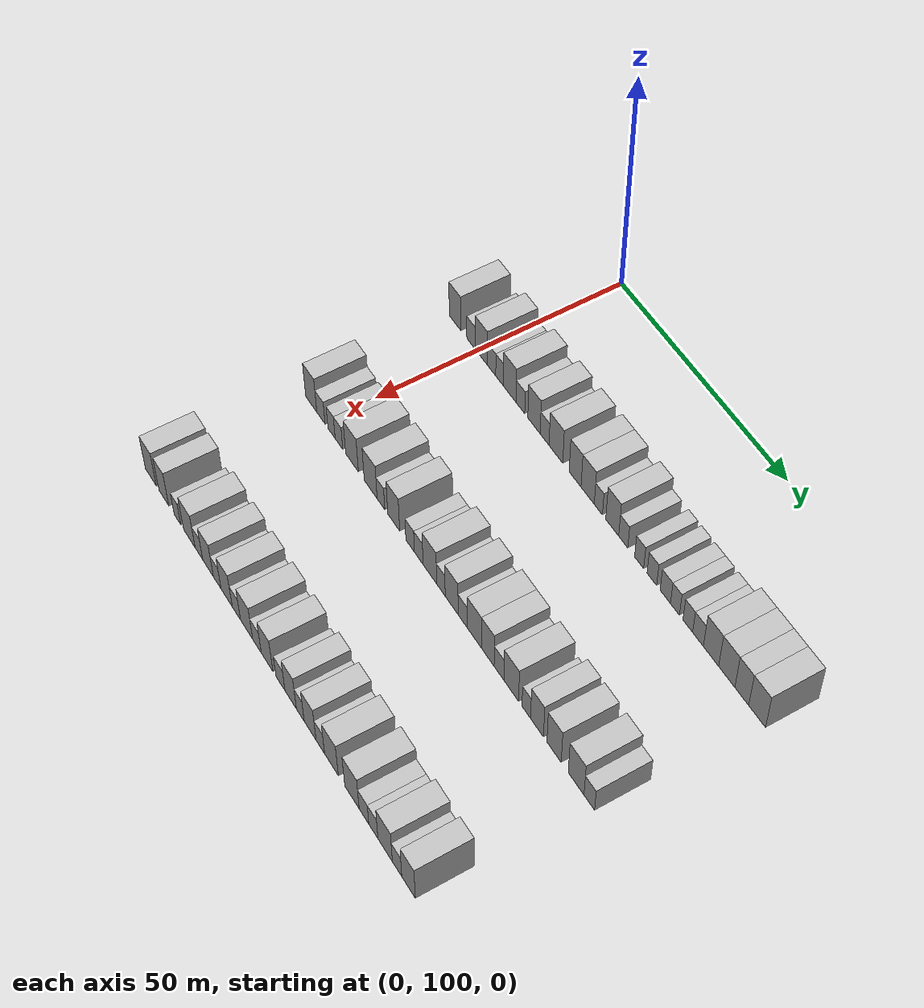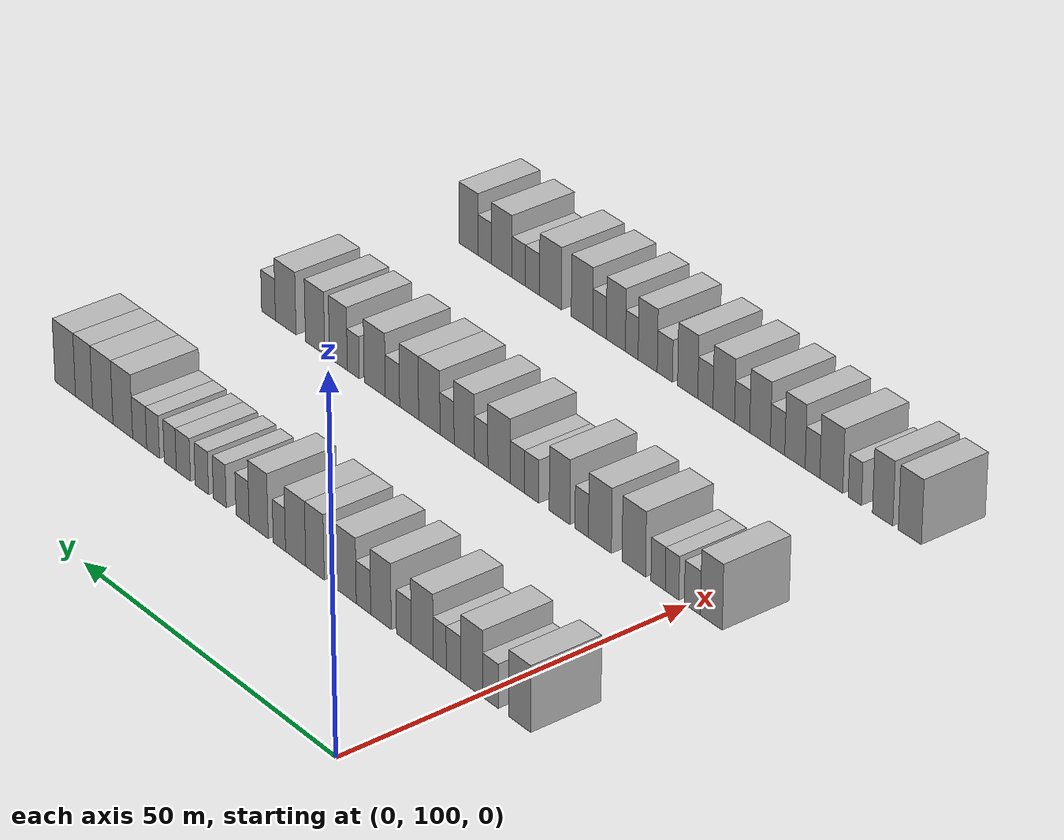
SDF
<sdf version="1.6">
 <world name="default">
  <model name="building_97">
   <static>1</static>
   <pose>25.0000 92.6432 0 0.000000 0.000000 0.000000</pose>
   <link name="link">
    <pose>0 0 4.50 0 0 0</pose>
    <collision name="collision"><geometry><box><size>10.0000 3.9647 9.0000</size></box></geometry></collision>
    <visual name="visual">
     <cast_shadows>0</cast_shadows>
     <geometry><box><size>10.0000 3.9647 9.0000</size></box></geometry>
     <material>
      <script>
       <uri>model://HANNAS_wall/materials/scripts</uri>
       <uri>model://HANNAS_wall/materials/textures</uri>
       <name>vrc/HANNAS_wall</name>
      </script>
     </material>
    </visual>
   </link>
  </model>
  <model name="building_98">
   <static>1</static>
   <pose>25.0000 98.0626 0 0.000000 0.000000 0.000000</pose>
   <link name="link">
    <pose>0 0 3.00 0 0 0</pose>
    <collision name="collision"><geometry><box><size>10.0000 2.8742 6.0000</size></box></geometry></collision>
    <visual name="visual">
     <cast_shadows>0</cast_shadows>
     <geometry><box><size>10.0000 2.8742 6.0000</size></box></geometry>
     <material>
      <script>
       <uri>model://HANNAS_wall/materials/scripts</uri>
       <uri>model://HANNAS_wall/materials/textures</uri>
       <name>vrc/HANNAS_wall</name>
      </script>
     </material>
    </visual>
   </link>
  </model>
  <model name="building_99">
   <static>1</static>
   <pose>25.0000 101.5281 0 0.000000 0.000000 0.000000</pose>
   <link name="link">
    <pose>0 0 4.50 0 0 0</pose>
    <collision name="collision"><geometry><box><size>10.0000 4.0567 9.0000</size></box></geometry></collision>
    <visual name="visual">
     <cast_shadows>0</cast_shadows>
     <geometry><box><size>10.0000 4.0567 9.0000</size></box></geometry>
     <material>
      <script>
       <uri>model://HANNAS_wall/materials/scripts</uri>
       <uri>model://HANNAS_wall/materials/textures</uri>
       <name>vrc/HANNAS_wall</name>
      </script>
     </material>
    </visual>
   </link>
  </model>
  <model name="building_100">
   <static>1</static>
   <pose>25.0000 104.9408 0 0.000000 0.000000 0.000000</pose>
   <link name="link">
    <pose>0 0 3.00 0 0 0</pose>
    <collision name="collision"><geometry><box><size>10.0000 2.7688 6.0000</size></box></geometry></collision>
    <visual name="visual">
     <cast_shadows>0</cast_shadows>
     <geometry><box><size>10.0000 2.7688 6.0000</size></box></geometry>
     <material>
      <script>
       <uri>model://HANNAS_wall/materials/scripts</uri>
       <uri>model://HANNAS_wall/materials/textures</uri>
       <name>vrc/HANNAS_wall</name>
      </script>
     </material>
    </visual>
   </link>
  </model>
  <model name="building_101">
   <static>1</static>
   <pose>25.0000 107.5602 0 0.000000 0.000000 0.000000</pose>
   <link name="link">
    <pose>0 0 3.00 0 0 0</pose>
    <collision name="collision"><geometry><box><size>10.0000 2.4700 6.0000</size></box></geometry></collision>
    <visual name="visual">
     <cast_shadows>0</cast_shadows>
     <geometry><box><size>10.0000 2.4700 6.0000</size></box></geometry>
     <material>
      <script>
       <uri>model://HANNAS_wall/materials/scripts</uri>
       <uri>model://HANNAS_wall/materials/textures</uri>
       <name>vrc/HANNAS_wall</name>
      </script>
     </material>
    </visual>
   </link>
  </model>
  <model name="building_102">
   <static>1</static>
   <pose>25.0000 110.8871 0 0.000000 0.000000 0.000000</pose>
   <link name="link">
    <pose>0 0 4.50 0 0 0</pose>
    <collision name="collision"><geometry><box><size>10.0000 4.1836 9.0000</size></box></geometry></collision>
    <visual name="visual">
     <cast_shadows>0</cast_shadows>
     <geometry><box><size>10.0000 4.1836 9.0000</size></box></geometry>
     <material>
      <script>
       <uri>model://HANNAS_wall/materials/scripts</uri>
       <uri>model://HANNAS_wall/materials/textures</uri>
       <name>vrc/HANNAS_wall</name>
      </script>
     </material>
    </visual>
   </link>
  </model>
  <model name="building_103">
   <static>1</static>
   <pose>25.0000 114.3902 0 0.000000 0.000000 0.000000</pose>
   <link name="link">
    <pose>0 0 3.00 0 0 0</pose>
    <collision name="collision"><geometry><box><size>10.0000 2.8227 6.0000</size></box></geometry></collision>
    <visual name="visual">
     <cast_shadows>0</cast_shadows>
     <geometry><box><size>10.0000 2.8227 6.0000</size></box></geometry>
     <material>
      <script>
       <uri>model://HANNAS_wall/materials/scripts</uri>
       <uri>model://HANNAS_wall/materials/textures</uri>
       <name>vrc/HANNAS_wall</name>
      </script>
     </material>
    </visual>
   </link>
  </model>
  <model name="building_104">
   <static>1</static>
   <pose>25.0000 118.7775 0 0.000000 0.000000 0.000000</pose>
   <link name="link">
    <pose>0 0 4.50 0 0 0</pose>
    <collision name="collision"><geometry><box><size>10.0000 3.9520 9.0000</size></box></geometry></collision>
    <visual name="visual">
     <cast_shadows>0</cast_shadows>
     <geometry><box><size>10.0000 3.9520 9.0000</size></box></geometry>
     <material>
      <script>
       <uri>model://HANNAS_wall/materials/scripts</uri>
       <uri>model://HANNAS_wall/materials/textures</uri>
       <name>vrc/HANNAS_wall</name>
      </script>
     </material>
    </visual>
   </link>
  </model>
  <model name="building_105">
   <static>1</static>
   <pose>25.0000 122.1627 0 0.000000 0.000000 0.000000</pose>
   <link name="link">
    <pose>0 0 3.00 0 0 0</pose>
    <collision name="collision"><geometry><box><size>10.0000 2.8183 6.0000</size></box></geometry></collision>
    <visual name="visual">
     <cast_shadows>0</cast_shadows>
     <geometry><box><size>10.0000 2.8183 6.0000</size></box></geometry>
     <material>
      <script>
       <uri>model://HANNAS_wall/materials/scripts</uri>
       <uri>model://HANNAS_wall/materials/textures</uri>
       <name>vrc/HANNAS_wall</name>
      </script>
     </material>
    </visual>
   </link>
  </model>
  <model name="building_106">
   <static>1</static>
   <pose>25.0000 125.7240 0 0.000000 0.000000 0.000000</pose>
   <link name="link">
    <pose>0 0 4.50 0 0 0</pose>
    <collision name="collision"><geometry><box><size>10.0000 4.3044 9.0000</size></box></geometry></collision>
    <visual name="visual">
     <cast_shadows>0</cast_shadows>
     <geometry><box><size>10.0000 4.3044 9.0000</size></box></geometry>
     <material>
      <script>
       <uri>model://HANNAS_wall/materials/scripts</uri>
       <uri>model://HANNAS_wall/materials/textures</uri>
       <name>vrc/HANNAS_wall</name>
      </script>
     </material>
    </visual>
   </link>
  </model>
  <model name="building_107">
   <static>1</static>
   <pose>25.0000 131.7097 0 0.000000 0.000000 0.000000</pose>
   <link name="link">
    <pose>0 0 4.50 0 0 0</pose>
    <collision name="collision"><geometry><box><size>10.0000 3.6670 9.0000</size></box></geometry></collision>
    <visual name="visual">
     <cast_shadows>0</cast_shadows>
     <geometry><box><size>10.0000 3.6670 9.0000</size></box></geometry>
     <material>
      <script>
       <uri>model://HANNAS_wall/materials/scripts</uri>
       <uri>model://HANNAS_wall/materials/textures</uri>
       <name>vrc/HANNAS_wall</name>
      </script>
     </material>
    </visual>
   </link>
  </model>
  <model name="building_108">
   <static>1</static>
   <pose>25.0000 135.5676 0 0.000000 0.000000 0.000000</pose>
   <link name="link">
    <pose>0 0 4.50 0 0 0</pose>
    <collision name="collision"><geometry><box><size>10.0000 4.0488 9.0000</size></box></geometry></collision>
    <visual name="visual">
     <cast_shadows>0</cast_shadows>
     <geometry><box><size>10.0000 4.0488 9.0000</size></box></geometry>
     <material>
      <script>
       <uri>model://HANNAS_wall/materials/scripts</uri>
       <uri>model://HANNAS_wall/materials/textures</uri>
       <name>vrc/HANNAS_wall</name>
      </script>
     </material>
    </visual>
   </link>
  </model>
  <model name="building_109">
   <static>1</static>
   <pose>25.0000 138.8299 0 0.000000 0.000000 0.000000</pose>
   <link name="link">
    <pose>0 0 3.00 0 0 0</pose>
    <collision name="collision"><geometry><box><size>10.0000 2.4757 6.0000</size></box></geometry></collision>
    <visual name="visual">
     <cast_shadows>0</cast_shadows>
     <geometry><box><size>10.0000 2.4757 6.0000</size></box></geometry>
     <material>
      <script>
       <uri>model://HANNAS_wall/materials/scripts</uri>
       <uri>model://HANNAS_wall/materials/textures</uri>
       <name>vrc/HANNAS_wall</name>
      </script>
     </material>
    </visual>
   </link>
  </model>
  <model name="building_110">
   <static>1</static>
   <pose>25.0000 143.0041 0 0.000000 0.000000 0.000000</pose>
   <link name="link">
    <pose>0 0 4.50 0 0 0</pose>
    <collision name="collision"><geometry><box><size>10.0000 3.8727 9.0000</size></box></geometry></collision>
    <visual name="visual">
     <cast_shadows>0</cast_shadows>
     <geometry><box><size>10.0000 3.8727 9.0000</size></box></geometry>
     <material>
      <script>
       <uri>model://HANNAS_wall/materials/scripts</uri>
       <uri>model://HANNAS_wall/materials/textures</uri>
       <name>vrc/HANNAS_wall</name>
      </script>
     </material>
    </visual>
   </link>
  </model>
  <model name="building_111">
   <static>1</static>
   <pose>25.0000 146.2888 0 0.000000 0.000000 0.000000</pose>
   <link name="link">
    <pose>0 0 3.00 0 0 0</pose>
    <collision name="collision"><geometry><box><size>10.0000 2.6967 6.0000</size></box></geometry></collision>
    <visual name="visual">
     <cast_shadows>0</cast_shadows>
     <geometry><box><size>10.0000 2.6967 6.0000</size></box></geometry>
     <material>
      <script>
       <uri>model://HANNAS_wall/materials/scripts</uri>
       <uri>model://HANNAS_wall/materials/textures</uri>
       <name>vrc/HANNAS_wall</name>
      </script>
     </material>
    </visual>
   </link>
  </model>
  <model name="building_112">
   <static>1</static>
   <pose>25.0000 150.9653 0 0.000000 0.000000 0.000000</pose>
   <link name="link">
    <pose>0 0 3.00 0 0 0</pose>
    <collision name="collision"><geometry><box><size>10.0000 2.6562 6.0000</size></box></geometry></collision>
    <visual name="visual">
     <cast_shadows>0</cast_shadows>
     <geometry><box><size>10.0000 2.6562 6.0000</size></box></geometry>
     <material>
      <script>
       <uri>model://HANNAS_wall/materials/scripts</uri>
       <uri>model://HANNAS_wall/materials/textures</uri>
       <name>vrc/HANNAS_wall</name>
      </script>
     </material>
    </visual>
   </link>
  </model>
  <model name="building_113">
   <static>1</static>
   <pose>25.0000 154.6771 0 0.000000 0.000000 0.000000</pose>
   <link name="link">
    <pose>0 0 3.00 0 0 0</pose>
    <collision name="collision"><geometry><box><size>10.0000 2.7674 6.0000</size></box></geometry></collision>
    <visual name="visual">
     <cast_shadows>0</cast_shadows>
     <geometry><box><size>10.0000 2.7674 6.0000</size></box></geometry>
     <material>
      <script>
       <uri>model://HANNAS_wall/materials/scripts</uri>
       <uri>model://HANNAS_wall/materials/textures</uri>
       <name>vrc/HANNAS_wall</name>
      </script>
     </material>
    </visual>
   </link>
  </model>
  <model name="building_114">
   <static>1</static>
   <pose>25.0000 158.5410 0 0.000000 0.000000 0.000000</pose>
   <link name="link">
    <pose>0 0 3.00 0 0 0</pose>
    <collision name="collision"><geometry><box><size>10.0000 2.9604 6.0000</size></box></geometry></collision>
    <visual name="visual">
     <cast_shadows>0</cast_shadows>
     <geometry><box><size>10.0000 2.9604 6.0000</size></box></geometry>
     <material>
      <script>
       <uri>model://HANNAS_wall/materials/scripts</uri>
       <uri>model://HANNAS_wall/materials/textures</uri>
       <name>vrc/HANNAS_wall</name>
      </script>
     </material>
    </visual>
   </link>
  </model>
  <model name="building_115">
   <static>1</static>
   <pose>25.0000 161.2959 0 0.000000 0.000000 0.000000</pose>
   <link name="link">
    <pose>0 0 3.00 0 0 0</pose>
    <collision name="collision"><geometry><box><size>10.0000 2.5495 6.0000</size></box></geometry></collision>
    <visual name="visual">
     <cast_shadows>0</cast_shadows>
     <geometry><box><size>10.0000 2.5495 6.0000</size></box></geometry>
     <material>
      <script>
       <uri>model://HANNAS_wall/materials/scripts</uri>
       <uri>model://HANNAS_wall/materials/textures</uri>
       <name>vrc/HANNAS_wall</name>
      </script>
     </material>
    </visual>
   </link>
  </model>
  <model name="building_116">
   <static>1</static>
   <pose>25.0000 164.9317 0 0.000000 0.000000 0.000000</pose>
   <link name="link">
    <pose>0 0 3.00 0 0 0</pose>
    <collision name="collision"><geometry><box><size>10.0000 2.7222 6.0000</size></box></geometry></collision>
    <visual name="visual">
     <cast_shadows>0</cast_shadows>
     <geometry><box><size>10.0000 2.7222 6.0000</size></box></geometry>
     <material>
      <script>
       <uri>model://HANNAS_wall/materials/scripts</uri>
       <uri>model://HANNAS_wall/materials/textures</uri>
       <name>vrc/HANNAS_wall</name>
      </script>
     </material>
    </visual>
   </link>
  </model>
  <model name="building_117">
   <static>1</static>
   <pose>25.0000 167.7919 0 0.000000 0.000000 0.000000</pose>
   <link name="link">
    <pose>0 0 3.00 0 0 0</pose>
    <collision name="collision"><geometry><box><size>10.0000 2.9983 6.0000</size></box></geometry></collision>
    <visual name="visual">
     <cast_shadows>0</cast_shadows>
     <geometry><box><size>10.0000 2.9983 6.0000</size></box></geometry>
     <material>
      <script>
       <uri>model://HANNAS_wall/materials/scripts</uri>
       <uri>model://HANNAS_wall/materials/textures</uri>
       <name>vrc/HANNAS_wall</name>
      </script>
     </material>
    </visual>
   </link>
  </model>
  <model name="building_118">
   <static>1</static>
   <pose>25.0000 171.4049 0 0.000000 0.000000 0.000000</pose>
   <link name="link">
    <pose>0 0 4.50 0 0 0</pose>
    <collision name="collision"><geometry><box><size>10.0000 4.2276 9.0000</size></box></geometry></collision>
    <visual name="visual">
     <cast_shadows>0</cast_shadows>
     <geometry><box><size>10.0000 4.2276 9.0000</size></box></geometry>
     <material>
      <script>
       <uri>model://HANNAS_wall/materials/scripts</uri>
       <uri>model://HANNAS_wall/materials/textures</uri>
       <name>vrc/HANNAS_wall</name>
      </script>
     </material>
    </visual>
   </link>
  </model>
  <model name="building_119">
   <static>1</static>
   <pose>25.0000 175.7273 0 0.000000 0.000000 0.000000</pose>
   <link name="link">
    <pose>0 0 4.50 0 0 0</pose>
    <collision name="collision"><geometry><box><size>10.0000 4.4171 9.0000</size></box></geometry></collision>
    <visual name="visual">
     <cast_shadows>0</cast_shadows>
     <geometry><box><size>10.0000 4.4171 9.0000</size></box></geometry>
     <material>
      <script>
       <uri>model://HANNAS_wall/materials/scripts</uri>
       <uri>model://HANNAS_wall/materials/textures</uri>
       <name>vrc/HANNAS_wall</name>
      </script>
     </material>
    </visual>
   </link>
  </model>
  <model name="building_120">
   <static>1</static>
   <pose>25.0000 179.7919 0 0.000000 0.000000 0.000000</pose>
   <link name="link">
    <pose>0 0 4.50 0 0 0</pose>
    <collision name="collision"><geometry><box><size>10.0000 3.7121 9.0000</size></box></geometry></collision>
    <visual name="visual">
     <cast_shadows>0</cast_shadows>
     <geometry><box><size>10.0000 3.7121 9.0000</size></box></geometry>
     <material>
      <script>
       <uri>model://HANNAS_wall/materials/scripts</uri>
       <uri>model://HANNAS_wall/materials/textures</uri>
       <name>vrc/HANNAS_wall</name>
      </script>
     </material>
    </visual>
   </link>
  </model>
  <model name="building_121">
   <static>1</static>
   <pose>25.0000 183.8972 0 0.000000 0.000000 0.000000</pose>
   <link name="link">
    <pose>0 0 4.50 0 0 0</pose>
    <collision name="collision"><geometry><box><size>10.0000 4.4984 9.0000</size></box></geometry></collision>
    <visual name="visual">
     <cast_shadows>0</cast_shadows>
     <geometry><box><size>10.0000 4.4984 9.0000</size></box></geometry>
     <material>
      <script>
       <uri>model://HANNAS_wall/materials/scripts</uri>
       <uri>model://HANNAS_wall/materials/textures</uri>
       <name>vrc/HANNAS_wall</name>
      </script>
     </material>
    </visual>
   </link>
  </model>
  <model name="building_247">
   <static>1</static>
   <pose>55.0000 95.5424 0 0.000000 0.000000 0.000000</pose>
   <link name="link">
    <pose>0 0 4.50 0 0 0</pose>
    <collision name="collision"><geometry><box><size>10.0000 3.9497 9.0000</size></box></geometry></collision>
    <visual name="visual">
     <cast_shadows>0</cast_shadows>
     <geometry><box><size>10.0000 3.9497 9.0000</size></box></geometry>
     <material>
      <script>
       <uri>model://HANNAS_wall/materials/scripts</uri>
       <uri>model://HANNAS_wall/materials/textures</uri>
       <name>vrc/HANNAS_wall</name>
      </script>
     </material>
    </visual>
   </link>
  </model>
  <model name="building_248">
   <static>1</static>
   <pose>55.0000 98.9866 0 0.000000 0.000000 0.000000</pose>
   <link name="link">
    <pose>0 0 3.00 0 0 0</pose>
    <collision name="collision"><geometry><box><size>10.0000 2.9389 6.0000</size></box></geometry></collision>
    <visual name="visual">
     <cast_shadows>0</cast_shadows>
     <geometry><box><size>10.0000 2.9389 6.0000</size></box></geometry>
     <material>
      <script>
       <uri>model://HANNAS_wall/materials/scripts</uri>
       <uri>model://HANNAS_wall/materials/textures</uri>
       <name>vrc/HANNAS_wall</name>
      </script>
     </material>
    </visual>
   </link>
  </model>
  <model name="building_249">
   <static>1</static>
   <pose>55.0000 102.7095 0 0.000000 0.000000 0.000000</pose>
   <link name="link">
    <pose>0 0 3.00 0 0 0</pose>
    <collision name="collision"><geometry><box><size>10.0000 2.5068 6.0000</size></box></geometry></collision>
    <visual name="visual">
     <cast_shadows>0</cast_shadows>
     <geometry><box><size>10.0000 2.5068 6.0000</size></box></geometry>
     <material>
      <script>
       <uri>model://HANNAS_wall/materials/scripts</uri>
       <uri>model://HANNAS_wall/materials/textures</uri>
       <name>vrc/HANNAS_wall</name>
      </script>
     </material>
    </visual>
   </link>
  </model>
  <model name="building_250">
   <static>1</static>
   <pose>55.0000 105.2925 0 0.000000 0.000000 0.000000</pose>
   <link name="link">
    <pose>0 0 3.00 0 0 0</pose>
    <collision name="collision"><geometry><box><size>10.0000 2.6593 6.0000</size></box></geometry></collision>
    <visual name="visual">
     <cast_shadows>0</cast_shadows>
     <geometry><box><size>10.0000 2.6593 6.0000</size></box></geometry>
     <material>
      <script>
       <uri>model://HANNAS_wall/materials/scripts</uri>
       <uri>model://HANNAS_wall/materials/textures</uri>
       <name>vrc/HANNAS_wall</name>
      </script>
     </material>
    </visual>
   </link>
  </model>
  <model name="building_251">
   <static>1</static>
   <pose>55.0000 109.8097 0 0.000000 0.000000 0.000000</pose>
   <link name="link">
    <pose>0 0 4.50 0 0 0</pose>
    <collision name="collision"><geometry><box><size>10.0000 4.3751 9.0000</size></box></geometry></collision>
    <visual name="visual">
     <cast_shadows>0</cast_shadows>
     <geometry><box><size>10.0000 4.3751 9.0000</size></box></geometry>
     <material>
      <script>
       <uri>model://HANNAS_wall/materials/scripts</uri>
       <uri>model://HANNAS_wall/materials/textures</uri>
       <name>vrc/HANNAS_wall</name>
      </script>
     </material>
    </visual>
   </link>
  </model>
  <model name="building_252">
   <static>1</static>
   <pose>55.0000 116.1720 0 0.000000 0.000000 0.000000</pose>
   <link name="link">
    <pose>0 0 4.50 0 0 0</pose>
    <collision name="collision"><geometry><box><size>10.0000 4.3495 9.0000</size></box></geometry></collision>
    <visual name="visual">
     <cast_shadows>0</cast_shadows>
     <geometry><box><size>10.0000 4.3495 9.0000</size></box></geometry>
     <material>
      <script>
       <uri>model://HANNAS_wall/materials/scripts</uri>
       <uri>model://HANNAS_wall/materials/textures</uri>
       <name>vrc/HANNAS_wall</name>
      </script>
     </material>
    </visual>
   </link>
  </model>
  <model name="building_253">
   <static>1</static>
   <pose>55.0000 119.6206 0 0.000000 0.000000 0.000000</pose>
   <link name="link">
    <pose>0 0 3.00 0 0 0</pose>
    <collision name="collision"><geometry><box><size>10.0000 2.5476 6.0000</size></box></geometry></collision>
    <visual name="visual">
     <cast_shadows>0</cast_shadows>
     <geometry><box><size>10.0000 2.5476 6.0000</size></box></geometry>
     <material>
      <script>
       <uri>model://HANNAS_wall/materials/scripts</uri>
       <uri>model://HANNAS_wall/materials/textures</uri>
       <name>vrc/HANNAS_wall</name>
      </script>
     </material>
    </visual>
   </link>
  </model>
  <model name="building_254">
   <static>1</static>
   <pose>55.0000 123.8730 0 0.000000 0.000000 0.000000</pose>
   <link name="link">
    <pose>0 0 4.50 0 0 0</pose>
    <collision name="collision"><geometry><box><size>10.0000 3.9574 9.0000</size></box></geometry></collision>
    <visual name="visual">
     <cast_shadows>0</cast_shadows>
     <geometry><box><size>10.0000 3.9574 9.0000</size></box></geometry>
     <material>
      <script>
       <uri>model://HANNAS_wall/materials/scripts</uri>
       <uri>model://HANNAS_wall/materials/textures</uri>
       <name>vrc/HANNAS_wall</name>
      </script>
     </material>
    </visual>
   </link>
  </model>
  <model name="building_255">
   <static>1</static>
   <pose>55.0000 129.2522 0 0.000000 0.000000 0.000000</pose>
   <link name="link">
    <pose>0 0 3.00 0 0 0</pose>
    <collision name="collision"><geometry><box><size>10.0000 2.8010 6.0000</size></box></geometry></collision>
    <visual name="visual">
     <cast_shadows>0</cast_shadows>
     <geometry><box><size>10.0000 2.8010 6.0000</size></box></geometry>
     <material>
      <script>
       <uri>model://HANNAS_wall/materials/scripts</uri>
       <uri>model://HANNAS_wall/materials/textures</uri>
       <name>vrc/HANNAS_wall</name>
      </script>
     </material>
    </visual>
   </link>
  </model>
  <model name="building_256">
   <static>1</static>
   <pose>55.0000 132.0462 0 0.000000 0.000000 0.000000</pose>
   <link name="link">
    <pose>0 0 3.00 0 0 0</pose>
    <collision name="collision"><geometry><box><size>10.0000 2.7869 6.0000</size></box></geometry></collision>
    <visual name="visual">
     <cast_shadows>0</cast_shadows>
     <geometry><box><size>10.0000 2.7869 6.0000</size></box></geometry>
     <material>
      <script>
       <uri>model://HANNAS_wall/materials/scripts</uri>
       <uri>model://HANNAS_wall/materials/textures</uri>
       <name>vrc/HANNAS_wall</name>
      </script>
     </material>
    </visual>
   </link>
  </model>
  <model name="building_257">
   <static>1</static>
   <pose>55.0000 135.6359 0 0.000000 0.000000 0.000000</pose>
   <link name="link">
    <pose>0 0 4.50 0 0 0</pose>
    <collision name="collision"><geometry><box><size>10.0000 4.3925 9.0000</size></box></geometry></collision>
    <visual name="visual">
     <cast_shadows>0</cast_shadows>
     <geometry><box><size>10.0000 4.3925 9.0000</size></box></geometry>
     <material>
      <script>
       <uri>model://HANNAS_wall/materials/scripts</uri>
       <uri>model://HANNAS_wall/materials/textures</uri>
       <name>vrc/HANNAS_wall</name>
      </script>
     </material>
    </visual>
   </link>
  </model>
  <model name="building_258">
   <static>1</static>
   <pose>55.0000 139.1600 0 0.000000 0.000000 0.000000</pose>
   <link name="link">
    <pose>0 0 3.00 0 0 0</pose>
    <collision name="collision"><geometry><box><size>10.0000 2.6557 6.0000</size></box></geometry></collision>
    <visual name="visual">
     <cast_shadows>0</cast_shadows>
     <geometry><box><size>10.0000 2.6557 6.0000</size></box></geometry>
     <material>
      <script>
       <uri>model://HANNAS_wall/materials/scripts</uri>
       <uri>model://HANNAS_wall/materials/textures</uri>
       <name>vrc/HANNAS_wall</name>
      </script>
     </material>
    </visual>
   </link>
  </model>
  <model name="building_259">
   <static>1</static>
   <pose>55.0000 142.5229 0 0.000000 0.000000 0.000000</pose>
   <link name="link">
    <pose>0 0 4.50 0 0 0</pose>
    <collision name="collision"><geometry><box><size>10.0000 4.0702 9.0000</size></box></geometry></collision>
    <visual name="visual">
     <cast_shadows>0</cast_shadows>
     <geometry><box><size>10.0000 4.0702 9.0000</size></box></geometry>
     <material>
      <script>
       <uri>model://HANNAS_wall/materials/scripts</uri>
       <uri>model://HANNAS_wall/materials/textures</uri>
       <name>vrc/HANNAS_wall</name>
      </script>
     </material>
    </visual>
   </link>
  </model>
  <model name="building_260">
   <static>1</static>
   <pose>55.0000 145.9675 0 0.000000 0.000000 0.000000</pose>
   <link name="link">
    <pose>0 0 3.00 0 0 0</pose>
    <collision name="collision"><geometry><box><size>10.0000 2.8189 6.0000</size></box></geometry></collision>
    <visual name="visual">
     <cast_shadows>0</cast_shadows>
     <geometry><box><size>10.0000 2.8189 6.0000</size></box></geometry>
     <material>
      <script>
       <uri>model://HANNAS_wall/materials/scripts</uri>
       <uri>model://HANNAS_wall/materials/textures</uri>
       <name>vrc/HANNAS_wall</name>
      </script>
     </material>
    </visual>
   </link>
  </model>
  <model name="building_261">
   <static>1</static>
   <pose>55.0000 149.5312 0 0.000000 0.000000 0.000000</pose>
   <link name="link">
    <pose>0 0 4.50 0 0 0</pose>
    <collision name="collision"><geometry><box><size>10.0000 4.3085 9.0000</size></box></geometry></collision>
    <visual name="visual">
     <cast_shadows>0</cast_shadows>
     <geometry><box><size>10.0000 4.3085 9.0000</size></box></geometry>
     <material>
      <script>
       <uri>model://HANNAS_wall/materials/scripts</uri>
       <uri>model://HANNAS_wall/materials/textures</uri>
       <name>vrc/HANNAS_wall</name>
      </script>
     </material>
    </visual>
   </link>
  </model>
  <model name="building_262">
   <static>1</static>
   <pose>55.0000 153.6237 0 0.000000 0.000000 0.000000</pose>
   <link name="link">
    <pose>0 0 4.50 0 0 0</pose>
    <collision name="collision"><geometry><box><size>10.0000 3.8764 9.0000</size></box></geometry></collision>
    <visual name="visual">
     <cast_shadows>0</cast_shadows>
     <geometry><box><size>10.0000 3.8764 9.0000</size></box></geometry>
     <material>
      <script>
       <uri>model://HANNAS_wall/materials/scripts</uri>
       <uri>model://HANNAS_wall/materials/textures</uri>
       <name>vrc/HANNAS_wall</name>
      </script>
     </material>
    </visual>
   </link>
  </model>
  <model name="building_263">
   <static>1</static>
   <pose>55.0000 157.0306 0 0.000000 0.000000 0.000000</pose>
   <link name="link">
    <pose>0 0 3.00 0 0 0</pose>
    <collision name="collision"><geometry><box><size>10.0000 2.9375 6.0000</size></box></geometry></collision>
    <visual name="visual">
     <cast_shadows>0</cast_shadows>
     <geometry><box><size>10.0000 2.9375 6.0000</size></box></geometry>
     <material>
      <script>
       <uri>model://HANNAS_wall/materials/scripts</uri>
       <uri>model://HANNAS_wall/materials/textures</uri>
       <name>vrc/HANNAS_wall</name>
      </script>
     </material>
    </visual>
   </link>
  </model>
  <model name="building_264">
   <static>1</static>
   <pose>55.0000 160.6836 0 0.000000 0.000000 0.000000</pose>
   <link name="link">
    <pose>0 0 4.50 0 0 0</pose>
    <collision name="collision"><geometry><box><size>10.0000 4.3684 9.0000</size></box></geometry></collision>
    <visual name="visual">
     <cast_shadows>0</cast_shadows>
     <geometry><box><size>10.0000 4.3684 9.0000</size></box></geometry>
     <material>
      <script>
       <uri>model://HANNAS_wall/materials/scripts</uri>
       <uri>model://HANNAS_wall/materials/textures</uri>
       <name>vrc/HANNAS_wall</name>
      </script>
     </material>
    </visual>
   </link>
  </model>
  <model name="building_265">
   <static>1</static>
   <pose>55.0000 165.1180 0 0.000000 0.000000 0.000000</pose>
   <link name="link">
    <pose>0 0 3.00 0 0 0</pose>
    <collision name="collision"><geometry><box><size>10.0000 2.5003 6.0000</size></box></geometry></collision>
    <visual name="visual">
     <cast_shadows>0</cast_shadows>
     <geometry><box><size>10.0000 2.5003 6.0000</size></box></geometry>
     <material>
      <script>
       <uri>model://HANNAS_wall/materials/scripts</uri>
       <uri>model://HANNAS_wall/materials/textures</uri>
       <name>vrc/HANNAS_wall</name>
      </script>
     </material>
    </visual>
   </link>
  </model>
  <model name="building_266">
   <static>1</static>
   <pose>55.0000 168.2413 0 0.000000 0.000000 0.000000</pose>
   <link name="link">
    <pose>0 0 4.50 0 0 0</pose>
    <collision name="collision"><geometry><box><size>10.0000 3.7464 9.0000</size></box></geometry></collision>
    <visual name="visual">
     <cast_shadows>0</cast_shadows>
     <geometry><box><size>10.0000 3.7464 9.0000</size></box></geometry>
     <material>
      <script>
       <uri>model://HANNAS_wall/materials/scripts</uri>
       <uri>model://HANNAS_wall/materials/textures</uri>
       <name>vrc/HANNAS_wall</name>
      </script>
     </material>
    </visual>
   </link>
  </model>
  <model name="building_267">
   <static>1</static>
   <pose>55.0000 173.1499 0 0.000000 0.000000 0.000000</pose>
   <link name="link">
    <pose>0 0 4.50 0 0 0</pose>
    <collision name="collision"><geometry><box><size>10.0000 4.0708 9.0000</size></box></geometry></collision>
    <visual name="visual">
     <cast_shadows>0</cast_shadows>
     <geometry><box><size>10.0000 4.0708 9.0000</size></box></geometry>
     <material>
      <script>
       <uri>model://HANNAS_wall/materials/scripts</uri>
       <uri>model://HANNAS_wall/materials/textures</uri>
       <name>vrc/HANNAS_wall</name>
      </script>
     </material>
    </visual>
   </link>
  </model>
  <model name="building_268">
   <static>1</static>
   <pose>55.0000 179.3944 0 0.000000 0.000000 0.000000</pose>
   <link name="link">
    <pose>0 0 4.50 0 0 0</pose>
    <collision name="collision"><geometry><box><size>10.0000 4.4183 9.0000</size></box></geometry></collision>
    <visual name="visual">
     <cast_shadows>0</cast_shadows>
     <geometry><box><size>10.0000 4.4183 9.0000</size></box></geometry>
     <material>
      <script>
       <uri>model://HANNAS_wall/materials/scripts</uri>
       <uri>model://HANNAS_wall/materials/textures</uri>
       <name>vrc/HANNAS_wall</name>
      </script>
     </material>
    </visual>
   </link>
  </model>
  <model name="building_269">
   <static>1</static>
   <pose>55.0000 183.0828 0 0.000000 0.000000 0.000000</pose>
   <link name="link">
    <pose>0 0 3.00 0 0 0</pose>
    <collision name="collision"><geometry><box><size>10.0000 2.9585 6.0000</size></box></geometry></collision>
    <visual name="visual">
     <cast_shadows>0</cast_shadows>
     <geometry><box><size>10.0000 2.9585 6.0000</size></box></geometry>
     <material>
      <script>
       <uri>model://HANNAS_wall/materials/scripts</uri>
       <uri>model://HANNAS_wall/materials/textures</uri>
       <name>vrc/HANNAS_wall</name>
      </script>
     </material>
    </visual>
   </link>
  </model>
  <model name="building_382">
   <static>1</static>
   <pose>85.0000 95.3717 0 0.000000 0.000000 0.000000</pose>
   <link name="link">
    <pose>0 0 4.50 0 0 0</pose>
    <collision name="collision"><geometry><box><size>10.0000 4.1200 9.0000</size></box></geometry></collision>
    <visual name="visual">
     <cast_shadows>0</cast_shadows>
     <geometry><box><size>10.0000 4.1200 9.0000</size></box></geometry>
     <material>
      <script>
       <uri>model://HANNAS_wall/materials/scripts</uri>
       <uri>model://HANNAS_wall/materials/textures</uri>
       <name>vrc/HANNAS_wall</name>
      </script>
     </material>
    </visual>
   </link>
  </model>
  <model name="building_383">
   <static>1</static>
   <pose>85.0000 100.2700 0 0.000000 0.000000 0.000000</pose>
   <link name="link">
    <pose>0 0 4.50 0 0 0</pose>
    <collision name="collision"><geometry><box><size>10.0000 3.6765 9.0000</size></box></geometry></collision>
    <visual name="visual">
     <cast_shadows>0</cast_shadows>
     <geometry><box><size>10.0000 3.6765 9.0000</size></box></geometry>
     <material>
      <script>
       <uri>model://HANNAS_wall/materials/scripts</uri>
       <uri>model://HANNAS_wall/materials/textures</uri>
       <name>vrc/HANNAS_wall</name>
      </script>
     </material>
    </visual>
   </link>
  </model>
  <model name="building_384">
   <static>1</static>
   <pose>85.0000 105.3132 0 0.000000 0.000000 0.000000</pose>
   <link name="link">
    <pose>0 0 3.00 0 0 0</pose>
    <collision name="collision"><geometry><box><size>10.0000 2.4100 6.0000</size></box></geometry></collision>
    <visual name="visual">
     <cast_shadows>0</cast_shadows>
     <geometry><box><size>10.0000 2.4100 6.0000</size></box></geometry>
     <material>
      <script>
       <uri>model://HANNAS_wall/materials/scripts</uri>
       <uri>model://HANNAS_wall/materials/textures</uri>
       <name>vrc/HANNAS_wall</name>
      </script>
     </material>
    </visual>
   </link>
  </model>
  <model name="building_385">
   <static>1</static>
   <pose>85.0000 109.6289 0 0.000000 0.000000 0.000000</pose>
   <link name="link">
    <pose>0 0 4.50 0 0 0</pose>
    <collision name="collision"><geometry><box><size>10.0000 4.2215 9.0000</size></box></geometry></collision>
    <visual name="visual">
     <cast_shadows>0</cast_shadows>
     <geometry><box><size>10.0000 4.2215 9.0000</size></box></geometry>
     <material>
      <script>
       <uri>model://HANNAS_wall/materials/scripts</uri>
       <uri>model://HANNAS_wall/materials/textures</uri>
       <name>vrc/HANNAS_wall</name>
      </script>
     </material>
    </visual>
   </link>
  </model>
  <model name="building_386">
   <static>1</static>
   <pose>85.0000 113.1078 0 0.000000 0.000000 0.000000</pose>
   <link name="link">
    <pose>0 0 3.00 0 0 0</pose>
    <collision name="collision"><geometry><box><size>10.0000 2.7362 6.0000</size></box></geometry></collision>
    <visual name="visual">
     <cast_shadows>0</cast_shadows>
     <geometry><box><size>10.0000 2.7362 6.0000</size></box></geometry>
     <material>
      <script>
       <uri>model://HANNAS_wall/materials/scripts</uri>
       <uri>model://HANNAS_wall/materials/textures</uri>
       <name>vrc/HANNAS_wall</name>
      </script>
     </material>
    </visual>
   </link>
  </model>
  <model name="building_387">
   <static>1</static>
   <pose>85.0000 116.3786 0 0.000000 0.000000 0.000000</pose>
   <link name="link">
    <pose>0 0 4.50 0 0 0</pose>
    <collision name="collision"><geometry><box><size>10.0000 3.8053 9.0000</size></box></geometry></collision>
    <visual name="visual">
     <cast_shadows>0</cast_shadows>
     <geometry><box><size>10.0000 3.8053 9.0000</size></box></geometry>
     <material>
      <script>
       <uri>model://HANNAS_wall/materials/scripts</uri>
       <uri>model://HANNAS_wall/materials/textures</uri>
       <name>vrc/HANNAS_wall</name>
      </script>
     </material>
    </visual>
   </link>
  </model>
  <model name="building_388">
   <static>1</static>
   <pose>85.0000 119.6315 0 0.000000 0.000000 0.000000</pose>
   <link name="link">
    <pose>0 0 3.00 0 0 0</pose>
    <collision name="collision"><geometry><box><size>10.0000 2.7005 6.0000</size></box></geometry></collision>
    <visual name="visual">
     <cast_shadows>0</cast_shadows>
     <geometry><box><size>10.0000 2.7005 6.0000</size></box></geometry>
     <material>
      <script>
       <uri>model://HANNAS_wall/materials/scripts</uri>
       <uri>model://HANNAS_wall/materials/textures</uri>
       <name>vrc/HANNAS_wall</name>
      </script>
     </material>
    </visual>
   </link>
  </model>
  <model name="building_389">
   <static>1</static>
   <pose>85.0000 122.9406 0 0.000000 0.000000 0.000000</pose>
   <link name="link">
    <pose>0 0 4.50 0 0 0</pose>
    <collision name="collision"><geometry><box><size>10.0000 3.9176 9.0000</size></box></geometry></collision>
    <visual name="visual">
     <cast_shadows>0</cast_shadows>
     <geometry><box><size>10.0000 3.9176 9.0000</size></box></geometry>
     <material>
      <script>
       <uri>model://HANNAS_wall/materials/scripts</uri>
       <uri>model://HANNAS_wall/materials/textures</uri>
       <name>vrc/HANNAS_wall</name>
      </script>
     </material>
    </visual>
   </link>
  </model>
  <model name="building_390">
   <static>1</static>
   <pose>85.0000 126.3377 0 0.000000 0.000000 0.000000</pose>
   <link name="link">
    <pose>0 0 3.00 0 0 0</pose>
    <collision name="collision"><geometry><box><size>10.0000 2.8766 6.0000</size></box></geometry></collision>
    <visual name="visual">
     <cast_shadows>0</cast_shadows>
     <geometry><box><size>10.0000 2.8766 6.0000</size></box></geometry>
     <material>
      <script>
       <uri>model://HANNAS_wall/materials/scripts</uri>
       <uri>model://HANNAS_wall/materials/textures</uri>
       <name>vrc/HANNAS_wall</name>
      </script>
     </material>
    </visual>
   </link>
  </model>
  <model name="building_391">
   <static>1</static>
   <pose>85.0000 129.8448 0 0.000000 0.000000 0.000000</pose>
   <link name="link">
    <pose>0 0 4.50 0 0 0</pose>
    <collision name="collision"><geometry><box><size>10.0000 4.1377 9.0000</size></box></geometry></collision>
    <visual name="visual">
     <cast_shadows>0</cast_shadows>
     <geometry><box><size>10.0000 4.1377 9.0000</size></box></geometry>
     <material>
      <script>
       <uri>model://HANNAS_wall/materials/scripts</uri>
       <uri>model://HANNAS_wall/materials/textures</uri>
       <name>vrc/HANNAS_wall</name>
      </script>
     </material>
    </visual>
   </link>
  </model>
  <model name="building_392">
   <static>1</static>
   <pose>85.0000 133.3753 0 0.000000 0.000000 0.000000</pose>
   <link name="link">
    <pose>0 0 3.00 0 0 0</pose>
    <collision name="collision"><geometry><box><size>10.0000 2.9233 6.0000</size></box></geometry></collision>
    <visual name="visual">
     <cast_shadows>0</cast_shadows>
     <geometry><box><size>10.0000 2.9233 6.0000</size></box></geometry>
     <material>
      <script>
       <uri>model://HANNAS_wall/materials/scripts</uri>
       <uri>model://HANNAS_wall/materials/textures</uri>
       <name>vrc/HANNAS_wall</name>
      </script>
     </material>
    </visual>
   </link>
  </model>
  <model name="building_393">
   <static>1</static>
   <pose>85.0000 136.7953 0 0.000000 0.000000 0.000000</pose>
   <link name="link">
    <pose>0 0 4.50 0 0 0</pose>
    <collision name="collision"><geometry><box><size>10.0000 3.9165 9.0000</size></box></geometry></collision>
    <visual name="visual">
     <cast_shadows>0</cast_shadows>
     <geometry><box><size>10.0000 3.9165 9.0000</size></box></geometry>
     <material>
      <script>
       <uri>model://HANNAS_wall/materials/scripts</uri>
       <uri>model://HANNAS_wall/materials/textures</uri>
       <name>vrc/HANNAS_wall</name>
      </script>
     </material>
    </visual>
   </link>
  </model>
  <model name="building_394">
   <static>1</static>
   <pose>85.0000 141.2482 0 0.000000 0.000000 0.000000</pose>
   <link name="link">
    <pose>0 0 3.00 0 0 0</pose>
    <collision name="collision"><geometry><box><size>10.0000 2.9894 6.0000</size></box></geometry></collision>
    <visual name="visual">
     <cast_shadows>0</cast_shadows>
     <geometry><box><size>10.0000 2.9894 6.0000</size></box></geometry>
     <material>
      <script>
       <uri>model://HANNAS_wall/materials/scripts</uri>
       <uri>model://HANNAS_wall/materials/textures</uri>
       <name>vrc/HANNAS_wall</name>
      </script>
     </material>
    </visual>
   </link>
  </model>
  <model name="building_395">
   <static>1</static>
   <pose>85.0000 144.6225 0 0.000000 0.000000 0.000000</pose>
   <link name="link">
    <pose>0 0 4.50 0 0 0</pose>
    <collision name="collision"><geometry><box><size>10.0000 3.7591 9.0000</size></box></geometry></collision>
    <visual name="visual">
     <cast_shadows>0</cast_shadows>
     <geometry><box><size>10.0000 3.7591 9.0000</size></box></geometry>
     <material>
      <script>
       <uri>model://HANNAS_wall/materials/scripts</uri>
       <uri>model://HANNAS_wall/materials/textures</uri>
       <name>vrc/HANNAS_wall</name>
      </script>
     </material>
    </visual>
   </link>
  </model>
  <model name="building_396">
   <static>1</static>
   <pose>85.0000 147.7671 0 0.000000 0.000000 0.000000</pose>
   <link name="link">
    <pose>0 0 3.00 0 0 0</pose>
    <collision name="collision"><geometry><box><size>10.0000 2.5300 6.0000</size></box></geometry></collision>
    <visual name="visual">
     <cast_shadows>0</cast_shadows>
     <geometry><box><size>10.0000 2.5300 6.0000</size></box></geometry>
     <material>
      <script>
       <uri>model://HANNAS_wall/materials/scripts</uri>
       <uri>model://HANNAS_wall/materials/textures</uri>
       <name>vrc/HANNAS_wall</name>
      </script>
     </material>
    </visual>
   </link>
  </model>
  <model name="building_397">
   <static>1</static>
   <pose>85.0000 150.9326 0 0.000000 0.000000 0.000000</pose>
   <link name="link">
    <pose>0 0 4.50 0 0 0</pose>
    <collision name="collision"><geometry><box><size>10.0000 3.8011 9.0000</size></box></geometry></collision>
    <visual name="visual">
     <cast_shadows>0</cast_shadows>
     <geometry><box><size>10.0000 3.8011 9.0000</size></box></geometry>
     <material>
      <script>
       <uri>model://HANNAS_wall/materials/scripts</uri>
       <uri>model://HANNAS_wall/materials/textures</uri>
       <name>vrc/HANNAS_wall</name>
      </script>
     </material>
    </visual>
   </link>
  </model>
  <model name="building_398">
   <static>1</static>
   <pose>85.0000 154.1918 0 0.000000 0.000000 0.000000</pose>
   <link name="link">
    <pose>0 0 3.00 0 0 0</pose>
    <collision name="collision"><geometry><box><size>10.0000 2.7173 6.0000</size></box></geometry></collision>
    <visual name="visual">
     <cast_shadows>0</cast_shadows>
     <geometry><box><size>10.0000 2.7173 6.0000</size></box></geometry>
     <material>
      <script>
       <uri>model://HANNAS_wall/materials/scripts</uri>
       <uri>model://HANNAS_wall/materials/textures</uri>
       <name>vrc/HANNAS_wall</name>
      </script>
     </material>
    </visual>
   </link>
  </model>
  <model name="building_399">
   <static>1</static>
   <pose>85.0000 157.7285 0 0.000000 0.000000 0.000000</pose>
   <link name="link">
    <pose>0 0 4.50 0 0 0</pose>
    <collision name="collision"><geometry><box><size>10.0000 4.3560 9.0000</size></box></geometry></collision>
    <visual name="visual">
     <cast_shadows>0</cast_shadows>
     <geometry><box><size>10.0000 4.3560 9.0000</size></box></geometry>
     <material>
      <script>
       <uri>model://HANNAS_wall/materials/scripts</uri>
       <uri>model://HANNAS_wall/materials/textures</uri>
       <name>vrc/HANNAS_wall</name>
      </script>
     </material>
    </visual>
   </link>
  </model>
  <model name="building_400">
   <static>1</static>
   <pose>85.0000 164.1318 0 0.000000 0.000000 0.000000</pose>
   <link name="link">
    <pose>0 0 4.50 0 0 0</pose>
    <collision name="collision"><geometry><box><size>10.0000 4.4507 9.0000</size></box></geometry></collision>
    <visual name="visual">
     <cast_shadows>0</cast_shadows>
     <geometry><box><size>10.0000 4.4507 9.0000</size></box></geometry>
     <material>
      <script>
       <uri>model://HANNAS_wall/materials/scripts</uri>
       <uri>model://HANNAS_wall/materials/textures</uri>
       <name>vrc/HANNAS_wall</name>
      </script>
     </material>
    </visual>
   </link>
  </model>
  <model name="building_401">
   <static>1</static>
   <pose>85.0000 167.8267 0 0.000000 0.000000 0.000000</pose>
   <link name="link">
    <pose>0 0 3.00 0 0 0</pose>
    <collision name="collision"><geometry><box><size>10.0000 2.9391 6.0000</size></box></geometry></collision>
    <visual name="visual">
     <cast_shadows>0</cast_shadows>
     <geometry><box><size>10.0000 2.9391 6.0000</size></box></geometry>
     <material>
      <script>
       <uri>model://HANNAS_wall/materials/scripts</uri>
       <uri>model://HANNAS_wall/materials/textures</uri>
       <name>vrc/HANNAS_wall</name>
      </script>
     </material>
    </visual>
   </link>
  </model>
  <model name="building_402">
   <static>1</static>
   <pose>85.0000 170.6864 0 0.000000 0.000000 0.000000</pose>
   <link name="link">
    <pose>0 0 3.00 0 0 0</pose>
    <collision name="collision"><geometry><box><size>10.0000 2.7801 6.0000</size></box></geometry></collision>
    <visual name="visual">
     <cast_shadows>0</cast_shadows>
     <geometry><box><size>10.0000 2.7801 6.0000</size></box></geometry>
     <material>
      <script>
       <uri>model://HANNAS_wall/materials/scripts</uri>
       <uri>model://HANNAS_wall/materials/textures</uri>
       <name>vrc/HANNAS_wall</name>
      </script>
     </material>
    </visual>
   </link>
  </model>
  <model name="building_403">
   <static>1</static>
   <pose>85.0000 174.2268 0 0.000000 0.000000 0.000000</pose>
   <link name="link">
    <pose>0 0 4.50 0 0 0</pose>
    <collision name="collision"><geometry><box><size>10.0000 4.3009 9.0000</size></box></geometry></collision>
    <visual name="visual">
     <cast_shadows>0</cast_shadows>
     <geometry><box><size>10.0000 4.3009 9.0000</size></box></geometry>
     <material>
      <script>
       <uri>model://HANNAS_wall/materials/scripts</uri>
       <uri>model://HANNAS_wall/materials/textures</uri>
       <name>vrc/HANNAS_wall</name>
      </script>
     </material>
    </visual>
   </link>
  </model>
  <model name="building_404">
   <static>1</static>
   <pose>85.0000 177.7737 0 0.000000 0.000000 0.000000</pose>
   <link name="link">
    <pose>0 0 3.00 0 0 0</pose>
    <collision name="collision"><geometry><box><size>10.0000 2.7928 6.0000</size></box></geometry></collision>
    <visual name="visual">
     <cast_shadows>0</cast_shadows>
     <geometry><box><size>10.0000 2.7928 6.0000</size></box></geometry>
     <material>
      <script>
       <uri>model://HANNAS_wall/materials/scripts</uri>
       <uri>model://HANNAS_wall/materials/textures</uri>
       <name>vrc/HANNAS_wall</name>
      </script>
     </material>
    </visual>
   </link>
  </model>
  <model name="building_405">
   <static>1</static>
   <pose>85.0000 181.1661 0 0.000000 0.000000 0.000000</pose>
   <link name="link">
    <pose>0 0 4.50 0 0 0</pose>
    <collision name="collision"><geometry><box><size>10.0000 3.9920 9.0000</size></box></geometry></collision>
    <visual name="visual">
     <cast_shadows>0</cast_shadows>
     <geometry><box><size>10.0000 3.9920 9.0000</size></box></geometry>
     <material>
      <script>
       <uri>model://HANNAS_wall/materials/scripts</uri>
       <uri>model://HANNAS_wall/materials/textures</uri>
       <name>vrc/HANNAS_wall</name>
      </script>
     </material>
    </visual>
   </link>
  </model>
 </world>
</sdf>
